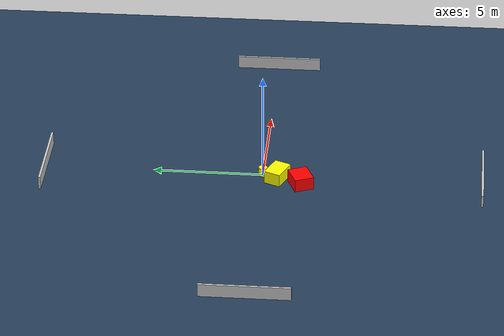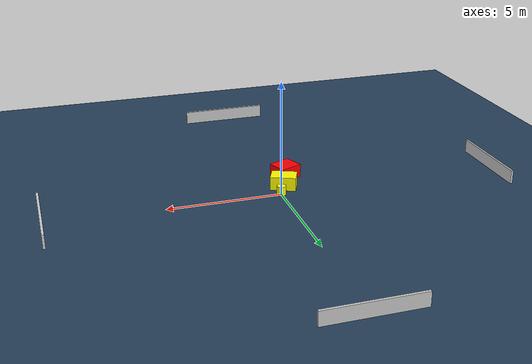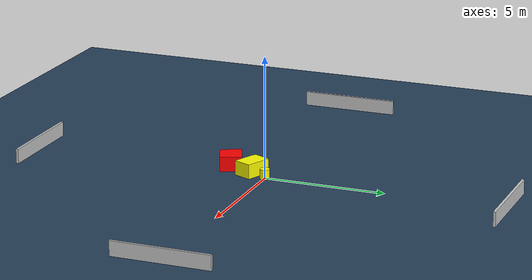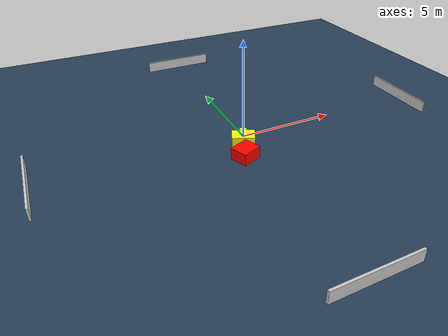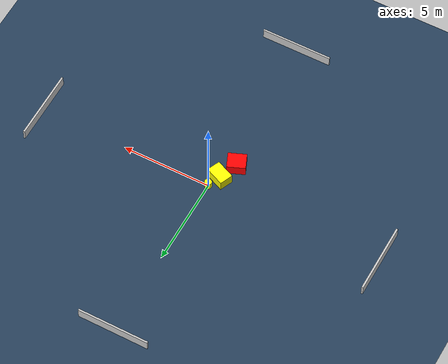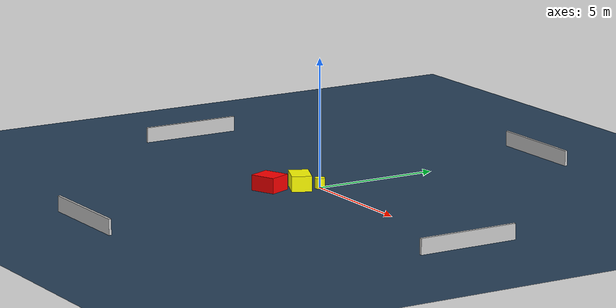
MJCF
<?xml version="1.0" ?>
<mujoco model="generated_environment">
  <option timestep="0.01" integrator="RK4" cone="elliptic"/>
  <default>
    <geom density="1"/>
  </default>
  <asset>
    <texture builtin="gradient" height="3072" name="skybox" rgb1="0.3 0.5 0.7" rgb2="0 0 0" type="skybox" width="512"/>
    <texture builtin="checker" height="300" name="groundplane" rgb1="0.2 0.3 0.4" rgb2="0.1 0.2 0.3" type="2d" width="300"/>
    <material name="groundplane" reflectance="0.2" texrepeat="5 5" texture="groundplane"/>
  </asset>
  <worldbody>
    <light dir="0 0 -1" directional="true" pos="0 0 1.5"/>
    <geom condim="3" friction="0.5 0.005 0.001" material="groundplane" name="floor" pos="0 0 0" size="0 0 0.05" type="plane"/>
    <body name="walls">
      <geom name="wall_1" condim="4" pos="-10.0 0.0 0.3" rgba="0.800000011920929 0.800000011920929 0.800000011920929 1.0" size="0.05 2.0 0.3" type="box"/>
      <geom name="wall_2" condim="4" pos="10.0 0.0 0.3" rgba="0.800000011920929 0.800000011920929 0.800000011920929 1.0" size="0.05 2.0 0.3" type="box"/>
      <geom name="wall_3" condim="4" pos="0.0 -10.0 0.3" rgba="0.800000011920929 0.800000011920929 0.800000011920929 1.0" size="2.0 0.05 0.3" type="box"/>
      <geom name="wall_4" condim="4" pos="0.0 10.0 0.3" rgba="0.800000011920929 0.800000011920929 0.800000011920929 1.0" size="2.0 0.05 0.3" type="box"/>
    </body>
    <body name="robot">
      <joint name="joint_x" type="slide" pos="0 0 0" axis="1 0 0"/>
      <joint name="joint_y" type="slide" pos="0 0 0" axis="0 1 0"/>
      <geom name="robot" type="cylinder" pos="0.0 0.0 0.2" size="0.2 0.2 0.0" mass="5.0" friction="1.0 0.005 0.0001" condim="4" rgba="1.0 1.0 0.0 1.0"/>
    </body>
    <body name="obstacle_1_movable">
      <geom name="obstacle_1_movable" condim="4" pos="-0.32490377622807665 -0.6805897510549735 0.3" euler="0 0 246.51592556124515" friction="0.0 0.005 0.001" rgba="1.0 1.0 0.0 1.0" size="0.38494665452027726 0.5562717170305905 0.3" type="box" mass="0.1"/>
      <joint type="free"/>
    </body>
    <body name="obstacle_2_static">
      <geom name="obstacle_2_static" condim="4" pos="-0.7430510386553549 -1.7695650300882435 0.3" euler="0 0 112.65899281458134" friction="0.0 0.005 0.001" rgba="1.0 0.0 0.0 1.0" size="0.4474961551886797 0.5088578344894317 0.3" type="box"/>
    </body>
  </worldbody>
  <actuator>
    <motor name="actuator_x" joint="joint_x" gear="1" ctrlrange="-1 1"/>
    <motor name="actuator_y" joint="joint_y" gear="1" ctrlrange="-1 1"/>
  </actuator>
</mujoco>
